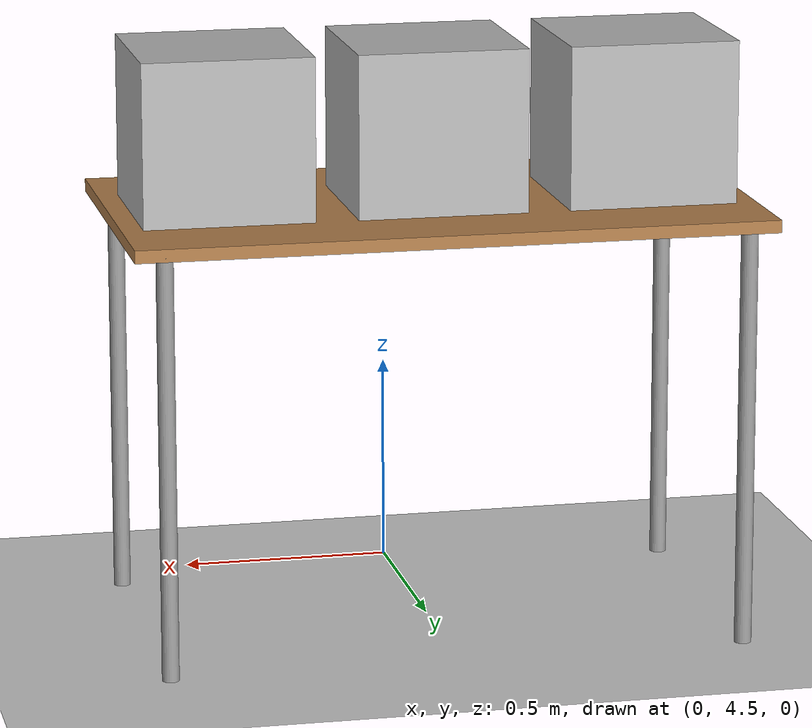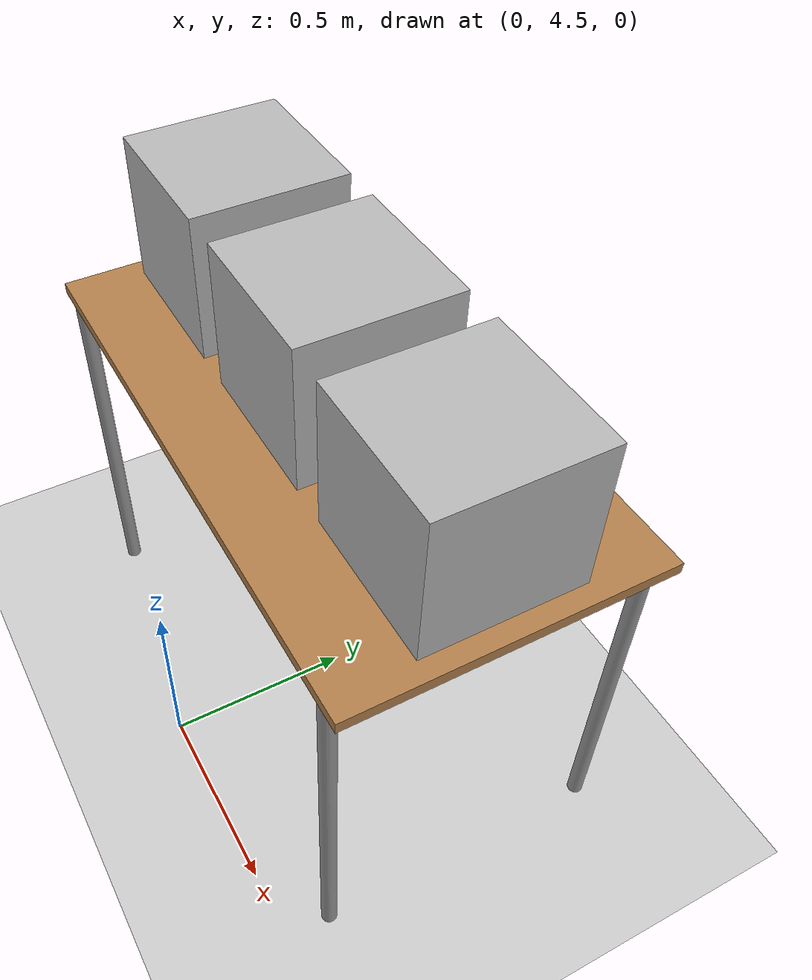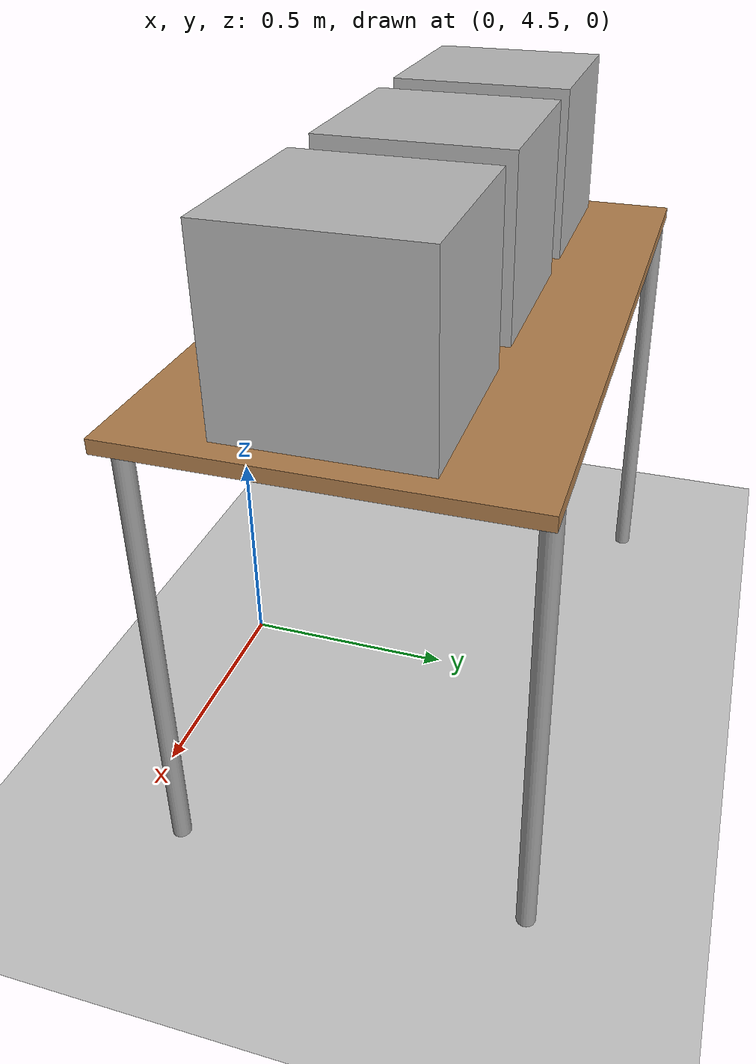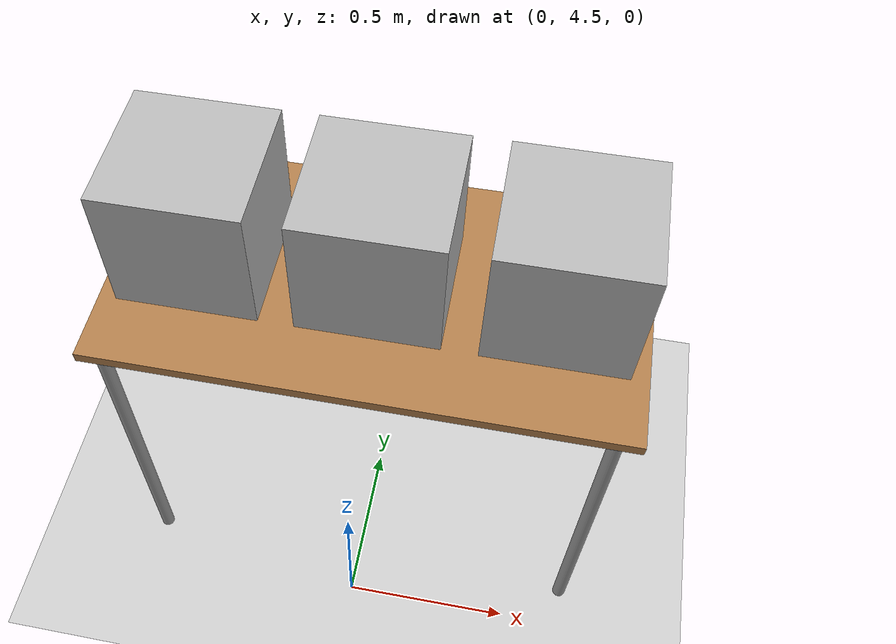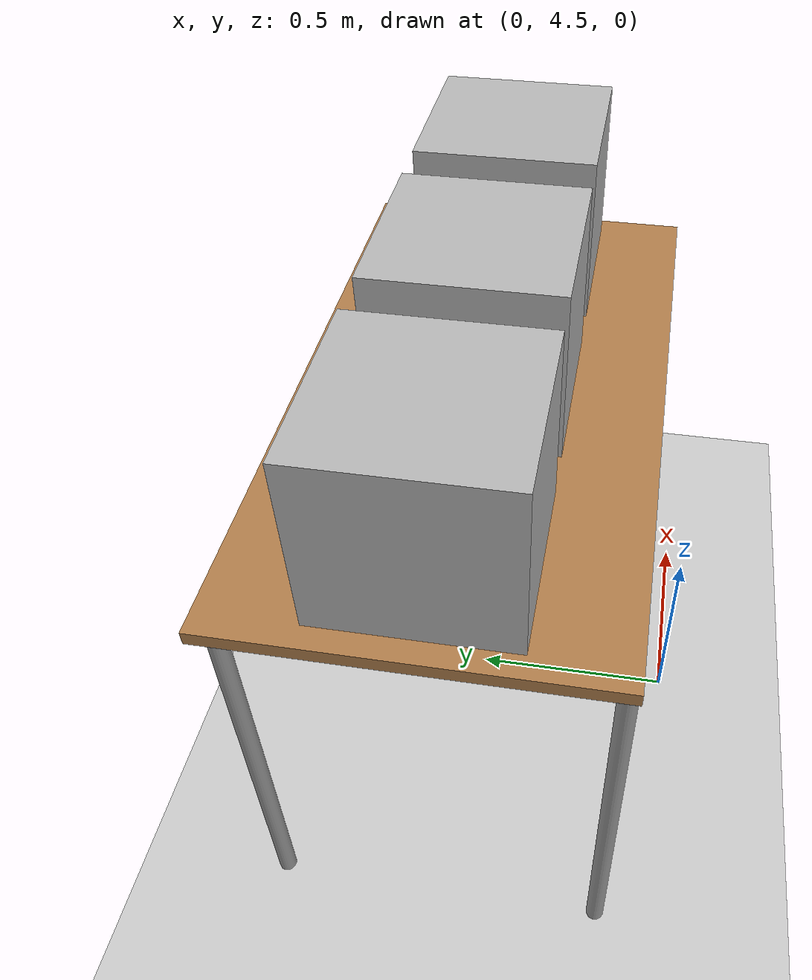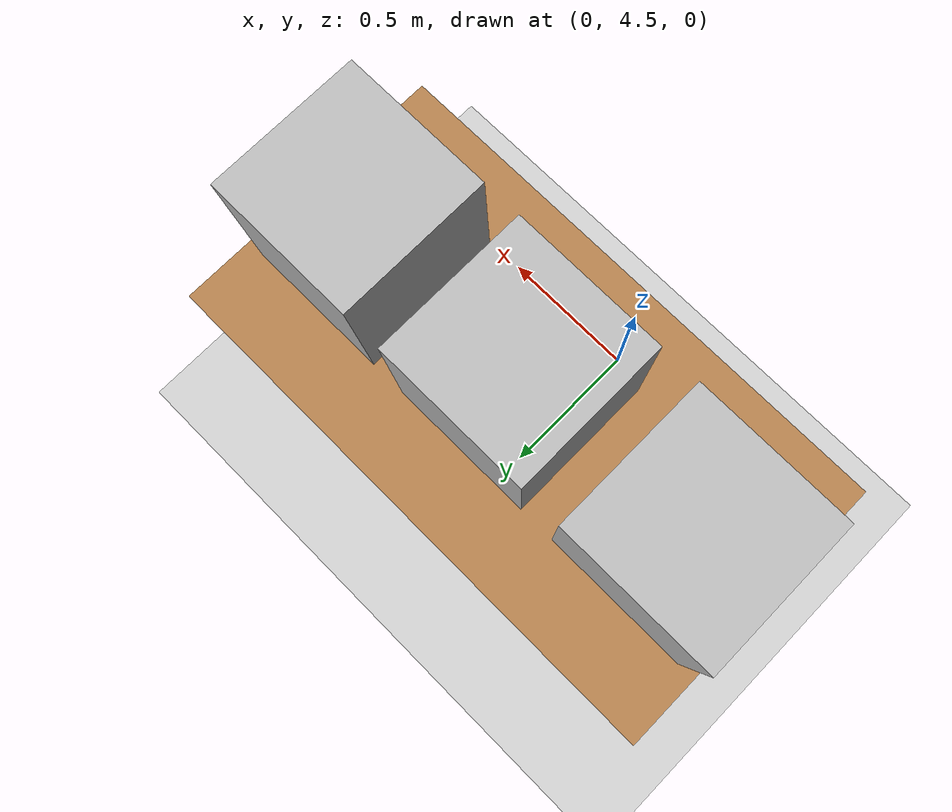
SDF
<sdf version="1.7">
 <world name="default">
  <light name="sun" type="directional">
   <pose>0 0 10 0 -0 0</pose>
   <diffuse>0.8 0.8 0.8 1</diffuse>
   <specular>0.2 0.2 0.2 1</specular>
   <attenuation>
    <range>1000</range>
    <constant>0.9</constant>
    <linear>0.01</linear>
    <quadratic>0.001</quadratic>
   </attenuation>
   <direction>-0.5 0.1 -0.9</direction>
   <spot><inner_angle>0</inner_angle><outer_angle>0</outer_angle><falloff>0</falloff></spot>
  </light>
  <include><uri>model://table</uri><pose>0 5 0 0 0 0</pose><static>1</static></include>
  <model name="number1">
   <pose>-0.5 5.0 1.2 0 0 0</pose>
   <static>1</static>
   <link name="link_number1">
    <visual name="visual_number1">
     <geometry><mesh><uri>model://number1/meshes/number.dae</uri><scale>0.5 0.5 0.5</scale></mesh></geometry>
     <material>
      <script>
       <uri>model://number1/materials/scripts</uri>
       <uri>model://number1/materials/textures</uri>
       <name>Number/One</name>
      </script>
     </material>
    </visual>
   </link>
  </model>
  <model name="number2">
   <pose>0 5.0 1.2 0 0 0</pose>
   <static>1</static>
   <link name="link_number2">
    <visual name="visual_number2">
     <geometry><mesh><uri>model://number1/meshes/number.dae</uri><scale>0.5 0.5 0.5</scale></mesh></geometry>
     <material>
      <script>
       <uri>model://number2/materials/scripts</uri>
       <uri>model://number2/materials/textures</uri>
       <name>Number/Two</name>
      </script>
     </material>
    </visual>
   </link>
  </model>
  <model name="number3">
   <pose>0.5 5.0 1.2 0 0 0</pose>
   <static>1</static>
   <link name="link_number3">
    <visual name="visual_number3">
     <geometry><mesh><uri>model://number1/meshes/number.dae</uri><scale>0.5 0.5 0.5</scale></mesh></geometry>
     <material>
      <script>
       <uri>model://number3/materials/scripts</uri>
       <uri>model://number3/materials/textures</uri>
       <name>Number/Three</name>
      </script>
     </material>
    </visual>
   </link>
  </model>
  <model name="ground_plane">
   <static>1</static>
   <link name="link_ground_plane">
    <collision name="collision_ground_plane">
     <geometry><plane><normal>0 0 1</normal><size>100 100</size></plane></geometry>
     <surface><friction><ode><mu>100</mu><mu2>50</mu2></ode></friction></surface>
    </collision>
    <visual name="visual_ground_plane">
     <cast_shadows>0</cast_shadows>
     <geometry><plane><normal>0 0 1</normal><size>100 100</size></plane></geometry>
     <material>
      <script><uri>file://media/materials/scripts/gazebo.material</uri><name>Gazebo/Grey</name></script>
     </material>
    </visual>
   </link>
  </model>
  <gravity>0 0 -9.8</gravity>
  <magnetic_field>6e-06 2.3e-05 -4.2e-05</magnetic_field>
  <atmosphere type="adiabatic"/>
  <physics type="ode">
   <max_step_size>0.001</max_step_size>
   <real_time_factor>1</real_time_factor>
   <real_time_update_rate>1000</real_time_update_rate>
  </physics>
  <scene><ambient>0.4 0.4 0.4 1</ambient><background>0.7 0.7 0.7 1</background><shadows>1</shadows></scene>
  <spherical_coordinates>
   <surface_model>EARTH_WGS84</surface_model>
   <latitude_deg>0</latitude_deg>
   <longitude_deg>0</longitude_deg>
   <elevation>0</elevation>
   <heading_deg>0</heading_deg>
  </spherical_coordinates>
 </world>
</sdf>

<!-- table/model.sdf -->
<sdf version="1.5">
  <model name="table">
    <static>true</static>
    <link name="link">
      <collision name="surface">
        <pose>0 0 1.0 0 0 0</pose>
        <geometry>
          <box>
            <size>1.5 0.8 0.03</size>
          </box>
        </geometry>
        <surface>
          <friction>
            <ode>
              <mu>0.6</mu>
              <mu2>0.6</mu2>
            </ode>
          </friction>
        </surface>
      </collision>
      <visual name="visual1">
        <pose>0 0 1.0 0 0 0</pose>
        <geometry>
          <box>
            <size>1.5 0.8 0.03</size>
          </box>
        </geometry>
        <material>
          <script>
            <uri>model://media/materials/scripts/gazebo.material</uri>
            <name>Gazebo/Wood</name>
          </script>
        </material>
      </visual>
      <collision name="front_left_leg">
        <pose>0.68 0.38 0.5 0 0 0</pose>
        <geometry>
          <cylinder>
            <radius>0.02</radius>
            <length>1.0</length>
          </cylinder>
        </geometry>
      </collision>
      <visual name="front_left_leg">
        <pose>0.68 0.38 0.5 0 0 0</pose>
        <geometry>
          <cylinder>
            <radius>0.02</radius>
            <length>1.0</length>
          </cylinder>
        </geometry>
        <material>
          <script>
            <uri>model://media/materials/scripts/gazebo.material</uri>
            <name>Gazebo/Grey</name>
          </script>
        </material>
      </visual>
      <collision name="front_right_leg">
        <pose>0.68 -0.38 0.5 0 0 0</pose>
        <geometry>
          <cylinder>
            <radius>0.02</radius>
            <length>1.0</length>
          </cylinder>
        </geometry>
      </collision>
      <visual name="front_right_leg">
        <pose>0.68 -0.38 0.5 0 0 0</pose>
        <geometry>
          <cylinder>
            <radius>0.02</radius>
            <length>1.0</length>
          </cylinder>
        </geometry>
        <material>
          <script>
            <uri>model://media/materials/scripts/gazebo.material</uri>
            <name>Gazebo/Grey</name>
          </script>
        </material>
      </visual>
      <collision name="back_right_leg">
        <pose>-0.68 -0.38 0.5 0 0 0</pose>
        <geometry>
          <cylinder>
            <radius>0.02</radius>
            <length>1.0</length>
          </cylinder>
        </geometry>
      </collision>
      <visual name="back_right_leg">
        <pose>-0.68 -0.38 0.5 0 0 0</pose>
        <geometry>
          <cylinder>
            <radius>0.02</radius>
            <length>1.0</length>
          </cylinder>
        </geometry>
        <material>
          <script>
            <uri>model://media/materials/scripts/gazebo.material</uri>
            <name>Gazebo/Grey</name>
          </script>
        </material>
      </visual>
      <collision name="back_left_leg">
        <pose>-0.68 0.38 0.5 0 0 0</pose>
        <geometry>
          <cylinder>
            <radius>0.02</radius>
            <length>1.0</length>
          </cylinder>
        </geometry>
      </collision>
      <visual name="back_left_leg">
        <pose>-0.68 0.38 0.5 0 0 0</pose>
        <geometry>
          <cylinder>
            <radius>0.02</radius>
            <length>1.0</length>
          </cylinder>
        </geometry>
        <material>
          <script>
            <uri>model://media/materials/scripts/gazebo.material</uri>
            <name>Gazebo/Grey</name>
          </script>
        </material>
      </visual>
    </link>
  </model>
</sdf>
